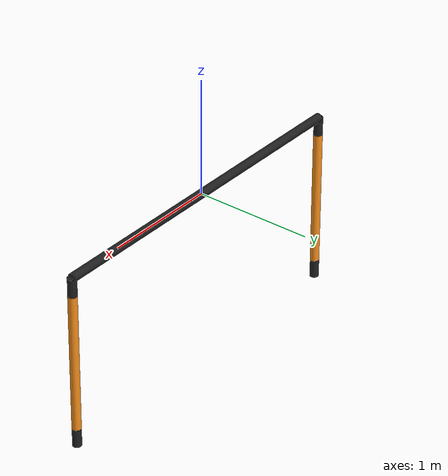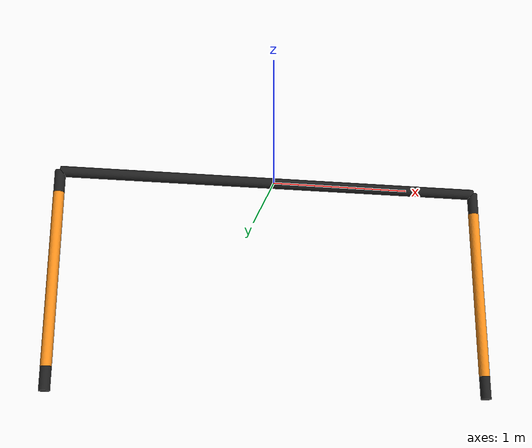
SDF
<?xml version='1.0'?>
<sdf version='1.5'>

  <model name='gate'>
    <pose>0 0 0 0 0 0</pose>
    <self_collide> 0 </self_collide>
    <static> 1</static>

    <link name='gate_top'>
      <pose>0 0 0 0 1.5707 0</pose>
      <visual name='gate_top_vis'>
        <geometry>
          <cylinder>
            <radius>0.0381</radius>
            <length>3.05</length>
          </cylinder>
        </geometry>
        <material>
          <script>
            <uri>file://media/materials/scripts/gazebo.material</uri>
            <name>Gazebo/FlatBlack</name>
          </script>
        </material>
      </visual>
      <collision name='gate_top_collide'>
        <pose>0 0 0 0 1.5707 0</pose>
        <geometry>
          <cylinder>
            <radius>0.0381</radius>
            <length>3.05</length>
          </cylinder>
        </geometry>
      </collision>
    </link>

    <link name='gate_right'>
      <pose>1.525 0 -0.762 0 0 0</pose>
      <visual name='gate_right_vis'>
        <geometry>
          <cylinder>
            <radius>0.0381</radius>
            <length>1.21</length>
          </cylinder>
        </geometry>
        <material>
          <script>
            <uri>file://media/materials/scripts/gazebo.material</uri>
            <name>Gazebo/Orange</name>
          </script>
          <diffuse>0.6 0.3088 0.0468 1</diffuse>
        </material>
      </visual>
      <visual name='gate_right_top'>
        <pose>0 0 0.6858 0 0 0</pose>
        <geometry>
          <cylinder>
            <radius>0.0381</radius>
            <length>0.16</length>
          </cylinder>
        </geometry>
        <material>
          <script>
            <uri>file://media/materials/scripts/gazebo.material</uri>
            <name>Gazebo/FlatBlack</name>
          </script>
        </material>
      </visual>
      <visual name='gate_right_bottom'>
        <pose>0 0 -0.6858 0 0 0</pose>
        <geometry>
          <cylinder>
            <radius>0.0381</radius>
            <length>0.16</length>
          </cylinder>
        </geometry>
        <material>
          <script>
              <uri>file://media/materials/scripts/gazebo.material</uri>
              <name>Gazebo/FlatBlack</name>
          </script>
        </material>
      </visual>
      <collision name='gate_right_collide'>
        <pose>1.525 0 -0.762 0 0 0</pose>
        <geometry>
          <cylinder>
            <radius>0.0381</radius>
            <length>1.52</length>
          </cylinder>
        </geometry>
      </collision>
    </link>

    <link name='gate_left'>
      <pose>-1.525 0 -0.762 0 0 0</pose>
      <visual name='gate_left_vis'>
        <geometry>
          <cylinder>
            <radius>0.0381</radius>
            <length>1.21</length>
          </cylinder>
        </geometry>
        <material>
          <script>
            <uri>file://media/materials/scripts/gazebo.material</uri>
            <name>Gazebo/Orange</name>
          </script>
          <diffuse>0.6 0.3088 0.0468 1</diffuse>
        </material>
      </visual>
      <visual name='gate_left_top'>
        <pose>0 0 0.6858 0 0 0</pose>
        <geometry>
          <cylinder>
            <radius>0.0381</radius>
            <length>0.16</length>
          </cylinder>
        </geometry>
        <material>
          <script>
            <uri>file://media/materials/scripts/gazebo.material</uri>
            <name>Gazebo/FlatBlack</name>
          </script>
        </material>
      </visual>
      <visual name='gate_left_bottom'>
        <pose>0 0 -0.6858 0 0 0</pose>
        <geometry>
          <cylinder>
            <radius>0.0381</radius>
            <length>0.16</length>
          </cylinder>
        </geometry>
        <material>
          <script>
              <uri>file://media/materials/scripts/gazebo.material</uri>
              <name>Gazebo/FlatBlack</name>
          </script>
        </material>
      </visual>
      <collision name='gate_left_collide'>
        <pose>-1.525 0 -0.762 0 0 0</pose>
        <geometry>
          <cylinder>
            <radius>0.0381</radius>
            <length>1.52</length>
          </cylinder>
        </geometry>
      </collision>
    </link>

  </model>
</sdf>
